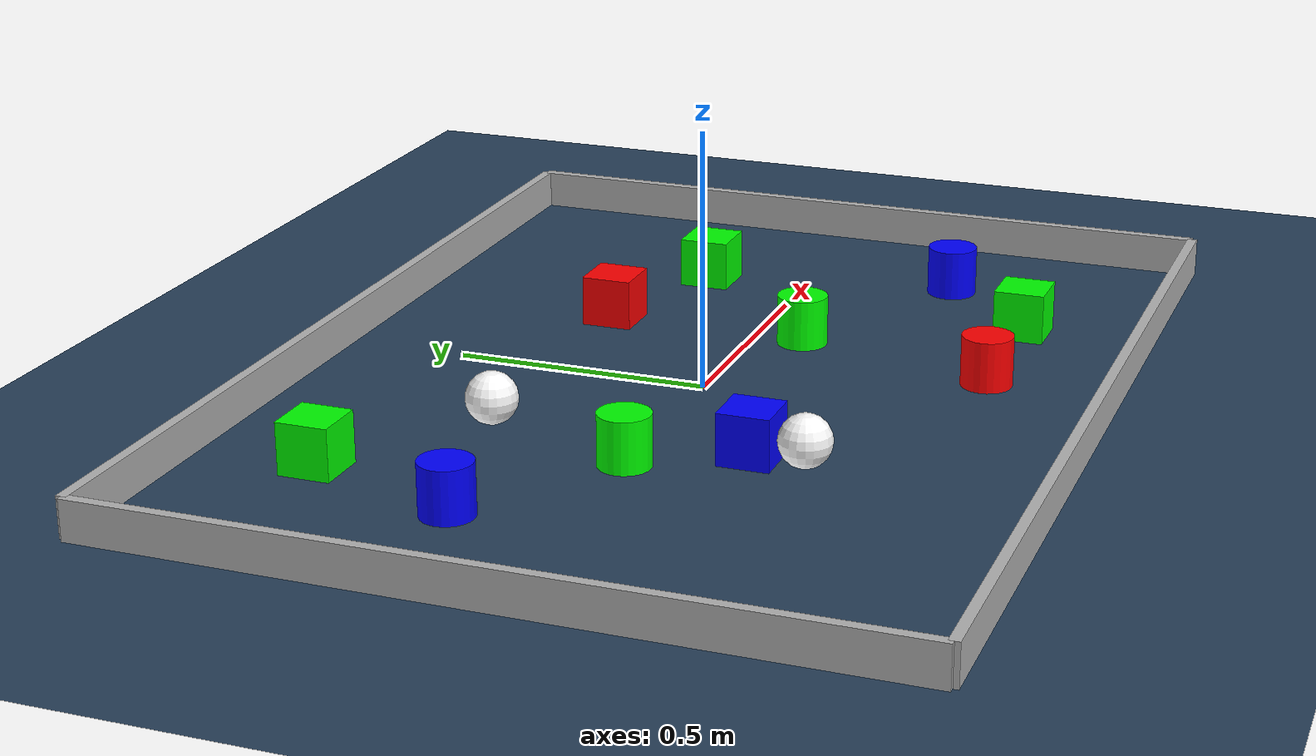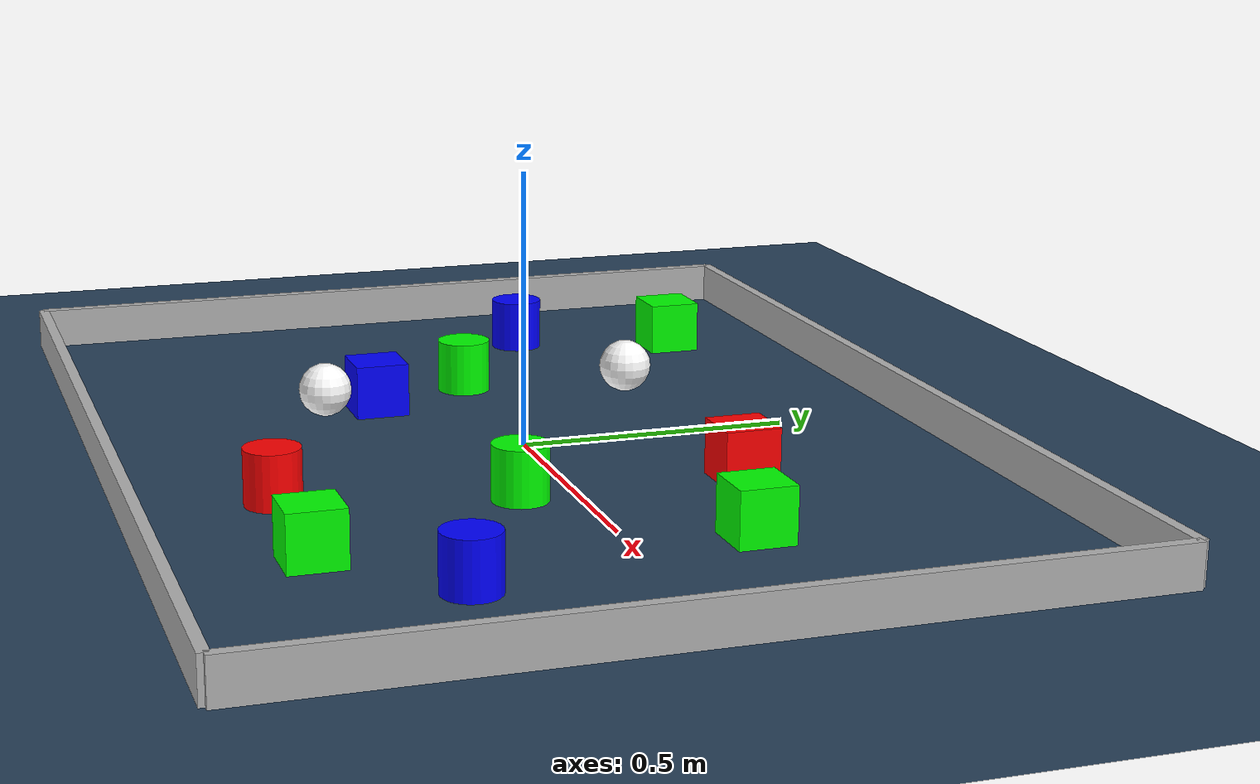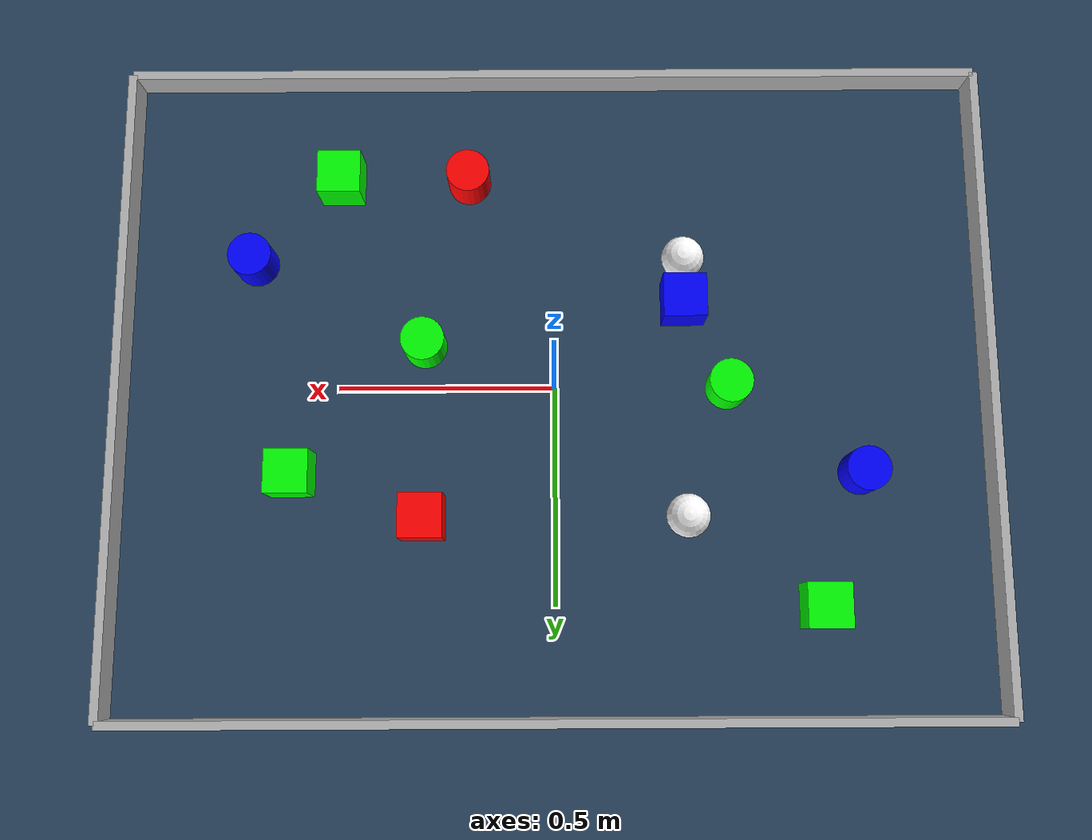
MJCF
<?xml version="1.0" ?>
<mujoco model="multi_agent_run">
    <compiler angle="degree" coordinate="local"/>
    <option timestep="0.001" gravity="0 0 0"/>

    <!-- Worldbody -->
    <worldbody>
        <!-- Ground plane -->
        <geom name="floor" size="0 0 0.05" type="plane" material="groundplane"/>

        <!-- Walls to enclose the space -->
        <!-- Wall at x = -1 -->
        <body name="wall_x_neg" pos="-1 0 0.025">
            <geom name="wall_x_neg_geom" type="box" size="0.01 0.75 0.05" rgba="0.7 0.7 0.7 1" contype="1" conaffinity="1"/>
            <inertial pos="0 0 0" mass="100.0" diaginertia="10 10 10"/>
        </body>

        <!-- Wall at x = 1 -->
        <body name="wall_x_pos" pos="1 0 0.025">
            <geom name="wall_x_pos_geom" type="box" size="0.01 0.75 0.05" rgba="0.7 0.7 0.7 1" contype="1" conaffinity="1"/>
            <inertial pos="0 0 0" mass="100.0" diaginertia="10 10 10"/>
        </body>

        <!-- Wall at y = -0.75 -->
        <body name="wall_y_neg" pos="0 -0.75 0.025">
            <geom name="wall_y_neg_geom" type="box" size="1 0.01 0.05" rgba="0.7 0.7 0.7 1" contype="1" conaffinity="1"/>
            <inertial pos="0 0 0" mass="100.0" diaginertia="10 10 10"/>
        </body>

        <!-- Wall at y = 0.75 -->
        <body name="wall_y_pos" pos="0 0.75 0.025">
            <geom name="wall_y_pos_geom" type="box" size="1 0.01 0.05" rgba="0.7 0.7 0.7 1" contype="1" conaffinity="1"/>
            <inertial pos="0 0 0" mass="100.0" diaginertia="10 10 10"/>
        </body>

        <!-- Green cube 1 -->
        <body name="cube" pos="0.6 0.2 0.05">
            <geom name="green_cube" type="box" size="0.05 0.05 0.05" rgba="0 1 0 1" contype="1" conaffinity="1"/>
            <joint name="cube_free_joint" type="free" />
            <inertial pos="0 0 0" mass="100.0" diaginertia="10 10 10"/>
        </body>

        <!-- Green cube 2 -->
        <body name="cube2" pos="-0.6 0.5 0.05">
            <geom name="green_cube2" type="box" size="0.05 0.05 0.05" rgba="0 1 0 1" contype="1" conaffinity="1"/>
            <joint name="cube_free_joint2" type="free" />
            <inertial pos="0 0 0" mass="100.0" diaginertia="10 10 10"/>
        </body>

        <!-- Green cube 3 -->
        <body name="cube3" pos="0.5 -0.5 0.05">
            <geom name="green_cube3" type="box" size="0.05 0.05 0.05" rgba="0 1 0 1" contype="1" conaffinity="1"/>
            <joint name="cube_free_joint3" type="free" />
            <inertial pos="0 0 0" mass="100.0" diaginertia="10 10 10"/>
        </body>

        <!-- Red cube 1 -->
        <body name="red_cube1" pos="0.3 0.3 0.05">
            <geom name="red_cube1" type="box" size="0.05 0.05 0.05" rgba="1 0 0 1" contype="1" conaffinity="1"/>
            <joint name="red_cube_free_joint1" type="free" />
            <inertial pos="0 0 0" mass="100.0" diaginertia="10 10 10"/>
        </body>

        <!-- Blue cube -->
        <body name="Blue_cube" pos="-0.3 -0.2 0.05">
            <geom name="blue_cube" type="box" size="0.05 0.05 0.05" rgba="0 0 1 1" contype="1" conaffinity="1"/>
            <joint name="blue_cube_free_joint" type="free" />
            <inertial pos="0 0 0" mass="100.0" diaginertia="10 10 10"/>
        </body>

        <!-- Blue cylinder 1 -->
        <body name="cylinder1" pos="0.7 -0.3 0.05">
            <geom name="blue_cylinder1" type="cylinder" size="0.05 0.05" rgba="0 0 1 1" contype="1" conaffinity="1"/>
            <joint name="cylinder_free_joint1" type="free" />
            <inertial pos="0 0 0" mass="100.0" diaginertia="10 10 10"/>
        </body>

        <!-- Blue cylinder 2 -->
        <body name="cylinder2" pos="-0.7 0.2 0.05">
            <geom name="blue_cylinder2" type="cylinder" size="0.05 0.05" rgba="0 0 1 1" contype="1" conaffinity="1"/>
            <joint name="cylinder_free_joint2" type="free" />
            <inertial pos="0 0 0" mass="100.0" diaginertia="10 10 10"/>
        </body>

        <!-- Red cylinder -->
        <body name="Red_cylinder" pos="0.2 -0.5 0.05">
            <geom name="red_cylinder3" type="cylinder" size="0.05 0.05" rgba="1 0 0 1" contype="1" conaffinity="1"/>
            <joint name="cylinder_free_joint3" type="free" />
            <inertial pos="0 0 0" mass="100.0" diaginertia="10 10 10"/>
        </body>

        <!-- Green cylinder 1 -->
        <body name="green_cylinder1" pos="0.3 -0.1 0.05">
            <geom name="green_cylinder1" type="cylinder" size="0.05 0.05" rgba="0 1 0 1" contype="1" conaffinity="1"/>
            <joint name="green_cylinder_free_joint1" type="free" />
            <inertial pos="0 0 0" mass="100.0" diaginertia="10 10 10"/>
        </body>

        <!-- Green cylinder 2 -->
        <body name="green_cylinder2" pos="-0.4 0 0.05">
            <geom name="green_cylinder2" type="cylinder" size="0.05 0.05" rgba="0 1 0 1" contype="1" conaffinity="1"/>
            <joint name="green_cylinder_free_joint2" type="free" />
            <inertial pos="0 0 0" mass="100.0" diaginertia="10 10 10"/>
        </body>

        <body name="white_sphero_0" pos="-0.3 -0.3 0.05">
            <geom name="white_sphero_0" type="sphere" size="0.05" rgba="1 1 1 1" contype="1" conaffinity="1"/>
            <joint name="white_sphero_0_free_joint" type="free" />
            <inertial pos="0 0 0" mass="10.0" diaginertia="1 1 1"/>
        </body>

        <body name="white_sphero_1" pos="-0.3 0.3 0.05">
            <geom name="white_sphero_1" type="sphere" size="0.05" rgba="1 1 1 1" contype="1" conaffinity="1"/>
            <joint name="white_sphero_1_free_joint" type="free" />
            <inertial pos="0 0 0" mass="10.0" diaginertia="1 1 1"/>
        </body>

            <body name="spotlight_body" pos="-0.4 -0.4 0.5">
                <joint name="spotlight_free_joint" type="free" />
                <light name="spotlight" pos="0 0 0" dir="0 0 -1" diffuse="1 1 1" specular="0.5 0.5 0.5" cutoff="45" exponent="10" directional="false"/>
                <camera name="spotlight_camera" pos="0 0 0.1" mode="trackcom"/>
                <inertial pos="0 0 0" mass="0.01" diaginertia="0.001 0.001 0.001"/>
            </body>

            <body name="spotlight_body_1" pos="-0.4 0.4 0.5">
                <joint name="spotlight_free_joint_1" type="free" />
                <light name="spotlight_1" pos="0 0 0" dir="0 0 -1" diffuse="1 1 1" specular="0.5 0.5 0.5" cutoff="45" exponent="10" directional="false"/>
                <camera name="spotlight_camera_1" pos="0 0 0.1" mode="trackcom"/>
                <inertial pos="0 0 0" mass="0.01" diaginertia="0.001 0.001 0.001"/>
            </body>

            <body name="spotlight_body_2" pos="0.4 -0.4 0.5">
                <joint name="spotlight_free_joint_2" type="free" />
                <light name="spotlight_2" pos="0 0 0" dir="0 0 -1" diffuse="1 1 1" specular="0.5 0.5 0.5" cutoff="45" exponent="10" directional="false"/>
                <camera name="spotlight_camera_2" pos="0 0 0.1" mode="trackcom"/>
                <inertial pos="0 0 0" mass="0.01" diaginertia="0.001 0.001 0.001"/>
            </body>
            <!-- Insert agents here -->

        <!-- Camera -->
        <camera name="fixed" pos="0 0 3" zaxis="0 0 1"/>
    </worldbody>

    <!-- Assets -->
    <asset>
        <texture type="skybox" builtin="gradient" rgb1="0.3 0.5 0.7" rgb2="0 0 0" width="512" height="3072"/>
        <texture type="2d" name="groundplane" builtin="checker" mark="edge" rgb1="0.2 0.3 0.4" rgb2="0.1 0.2 0.3"
        markrgb="0.8 0.8 0.8" width="300" height="300"/>
        <material name="groundplane" texture="groundplane" texuniform="true" texrepeat="5 5" reflectance="0.2"/>
    </asset>

    <!-- Visual -->
    <visual>
        <map znear="0.1" zfar="50"/>
    </visual>
</mujoco>
